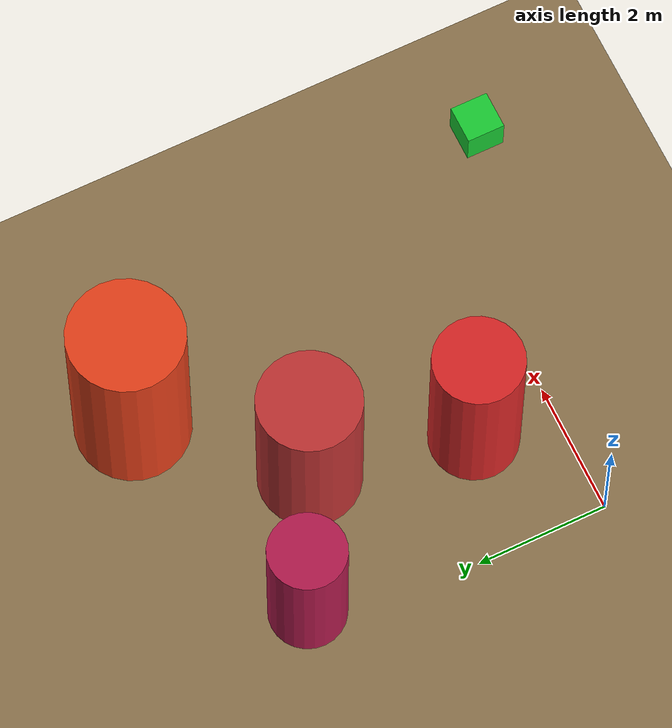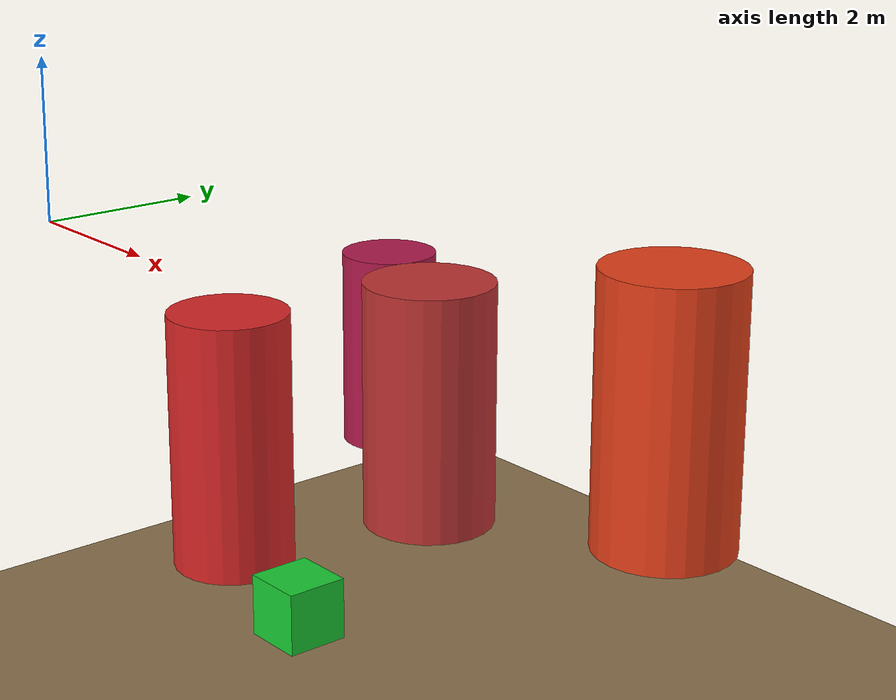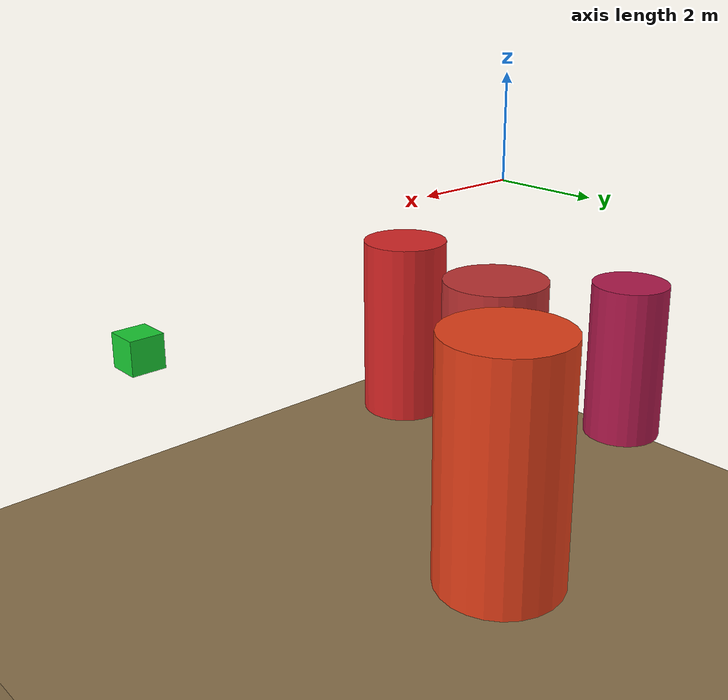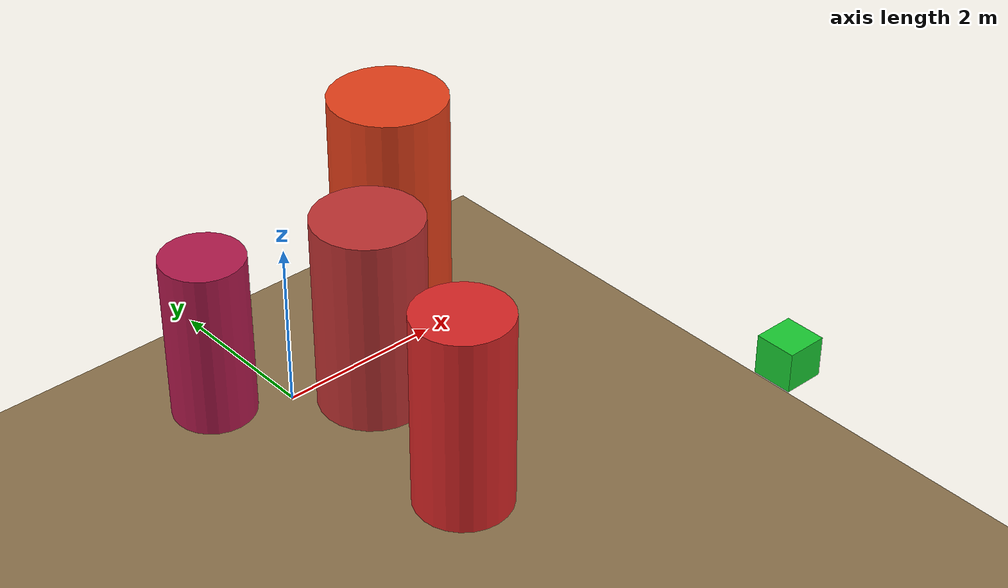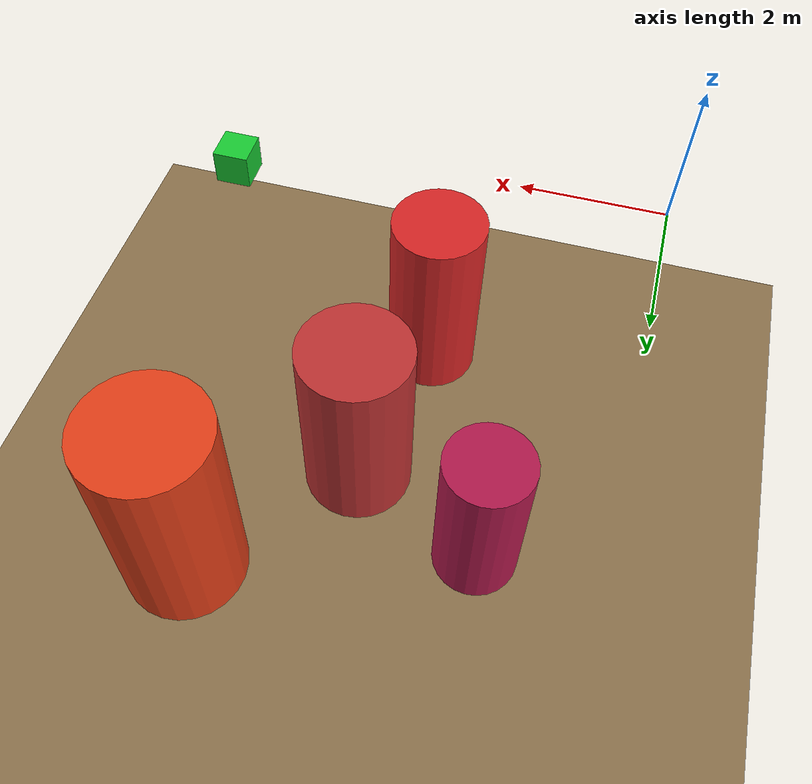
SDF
<sdf version="1.4">
 <world name="inspection_world">
  <gravity>0.0 0.0 0.0</gravity>
  <physics name="ODE_SOLVER" default="1" type="ode">
   <max_step_size>0.01</max_step_size>
   <real_time_factor>1</real_time_factor>
   <real_time_update_rate>100</real_time_update_rate>
  </physics>
  <scene><ambient>0.05 0.08 0.35 1.0</ambient><shadows>1</shadows></scene>
  <light type="directional" name="sun1">
   <pose>50 0 150 0 0 0</pose>
   <diffuse>1 1 1 1</diffuse>
   <direction>0.3 0.3 -1</direction>
  </light>
  <model name="flat_seafloor">
   <static>true</static>
   <pose>0 0 -6 0 0 0</pose>
   <link name="link">
    <collision name="c"><geometry><box><size>40 40 0.4</size></box></geometry></collision>
    <visual name="v">
     <geometry><box><size>40 40 0.4</size></box></geometry>
     <material><ambient>0.55 0.45 0.30 1</ambient><diffuse>0.55 0.45 0.30 1</diffuse></material>
    </visual>
   </link>
  </model>
  <model name="obstacle_1">
   <static>true</static>
   <pose>3.0 0.5 -2.0 0 0 0</pose>
   <link name="link">
    <collision name="c">
     <geometry><cylinder><radius>0.7</radius><length>3.0</length></cylinder></geometry>
    </collision>
    <visual name="v">
     <geometry><cylinder><radius>0.7</radius><length>3.0</length></cylinder></geometry>
     <material><ambient>0.85 0.15 0.15 1</ambient></material>
    </visual>
   </link>
  </model>
  <model name="obstacle_2">
   <static>true</static>
   <pose>3.5 3.0 -2.0 0 0 0</pose>
   <link name="link">
    <collision name="c">
     <geometry><cylinder><radius>0.8</radius><length>3.0</length></cylinder></geometry>
    </collision>
    <visual name="v">
     <geometry><cylinder><radius>0.8</radius><length>3.0</length></cylinder></geometry>
     <material><ambient>0.75 0.20 0.20 1</ambient></material>
    </visual>
   </link>
  </model>
  <model name="obstacle_3">
   <static>true</static>
   <pose>5.5 5.0 -2.0 0 0 0</pose>
   <link name="link">
    <collision name="c">
     <geometry><cylinder><radius>0.9</radius><length>3.5</length></cylinder></geometry>
    </collision>
    <visual name="v">
     <geometry><cylinder><radius>0.9</radius><length>3.5</length></cylinder></geometry>
     <material><ambient>0.90 0.25 0.10 1</ambient></material>
    </visual>
   </link>
  </model>
  <model name="obstacle_4">
   <static>true</static>
   <pose>1.5 4.0 -2.0 0 0 0</pose>
   <link name="link">
    <collision name="c">
     <geometry><cylinder><radius>0.6</radius><length>2.5</length></cylinder></geometry>
    </collision>
    <visual name="v">
     <geometry><cylinder><radius>0.6</radius><length>2.5</length></cylinder></geometry>
     <material><ambient>0.70 0.10 0.30 1</ambient></material>
    </visual>
   </link>
  </model>
  <model name="dock_station">
   <static>true</static>
   <pose>7.0 -1.5 -2.0 0 0 0</pose>
   <link name="link">
    <collision name="c"><geometry><box><size>0.6 0.6 0.6</size></box></geometry></collision>
    <visual name="v">
     <geometry><box><size>0.6 0.6 0.6</size></box></geometry>
     <material><ambient>0.1 0.8 0.2 1</ambient></material>
    </visual>
   </link>
  </model>
  <plugin name="gazebo_ros_state" filename="libgazebo_ros_state.so">
   <ros><namespace>/gazebo</namespace></ros>
   <update_rate>50.0</update_rate>
  </plugin>
 </world>
</sdf>
